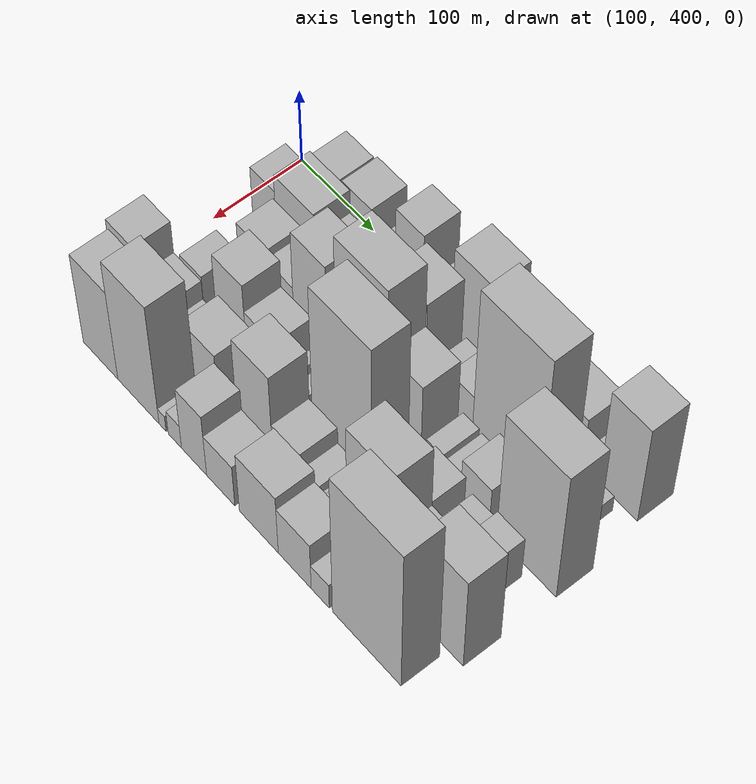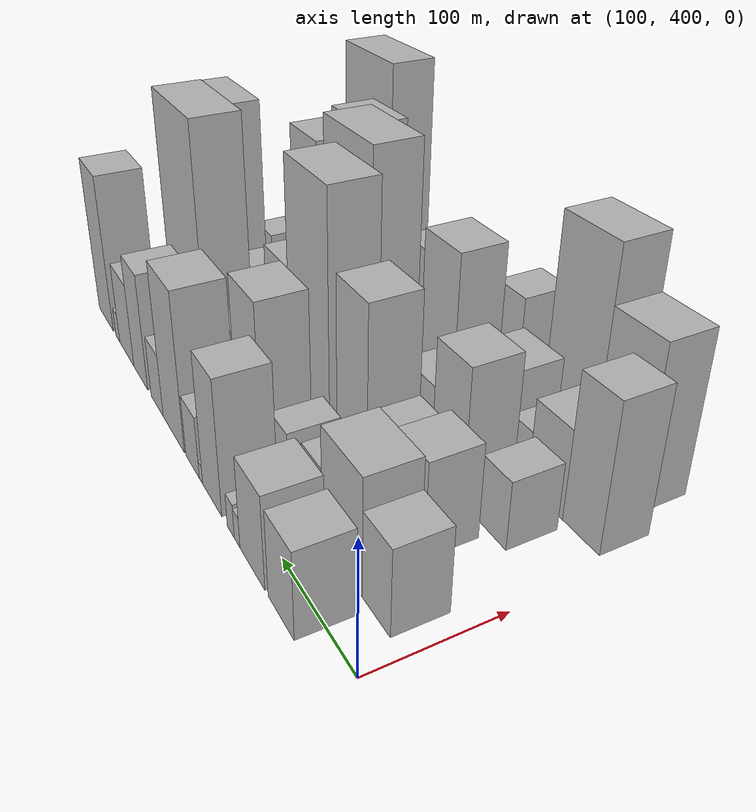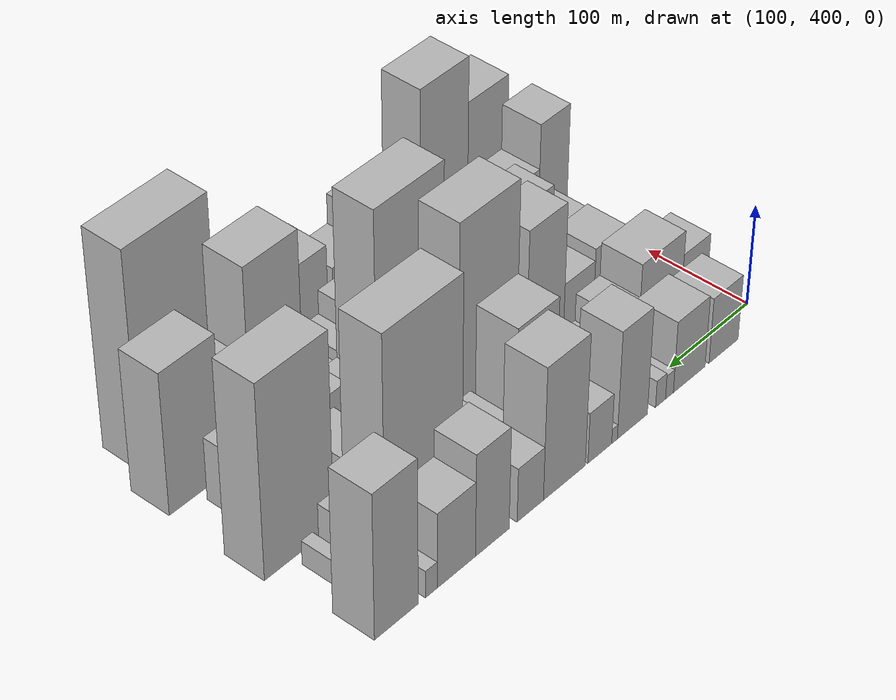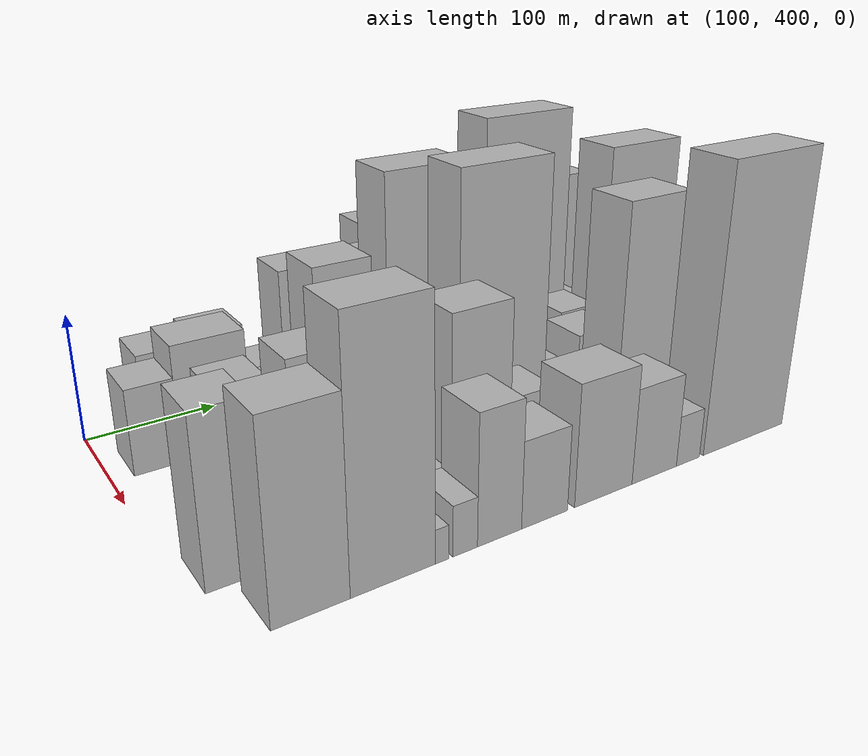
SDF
<sdf version="1.6">
 <world name="default">
  <model name="building_37">
   <static>1</static>
   <pose>100.0000 457.3815 0 0.000000 0.000000 0.000000</pose>
   <link name="link">
    <pose>0 0 33.00 0 0 0</pose>
    <collision name="collision"><geometry><box><size>40.0000 37.2246 66.0000</size></box></geometry></collision>
    <visual name="visual">
     <cast_shadows>0</cast_shadows>
     <geometry><box><size>40.0000 37.2246 66.0000</size></box></geometry>
     <material>
      <script>
       <uri>model://HANNAS_wall/materials/scripts</uri>
       <uri>model://HANNAS_wall/materials/textures</uri>
       <name>vrc/HANNAS_wall</name>
      </script>
     </material>
    </visual>
   </link>
  </model>
  <model name="building_38">
   <static>1</static>
   <pose>100.0000 500.9154 0 0.000000 0.000000 0.000000</pose>
   <link name="link">
    <pose>0 0 36.00 0 0 0</pose>
    <collision name="collision"><geometry><box><size>40.0000 39.8434 72.0000</size></box></geometry></collision>
    <visual name="visual">
     <cast_shadows>0</cast_shadows>
     <geometry><box><size>40.0000 39.8434 72.0000</size></box></geometry>
     <material>
      <script>
       <uri>model://HANNAS_wall/materials/scripts</uri>
       <uri>model://HANNAS_wall/materials/textures</uri>
       <name>vrc/HANNAS_wall</name>
      </script>
     </material>
    </visual>
   </link>
  </model>
  <model name="building_39">
   <static>1</static>
   <pose>100.0000 525.7118 0 0.000000 0.000000 0.000000</pose>
   <link name="link">
    <pose>0 0 12.00 0 0 0</pose>
    <collision name="collision"><geometry><box><size>40.0000 9.7493 24.0000</size></box></geometry></collision>
    <visual name="visual">
     <cast_shadows>0</cast_shadows>
     <geometry><box><size>40.0000 9.7493 24.0000</size></box></geometry>
     <material>
      <script>
       <uri>model://HANNAS_wall/materials/scripts</uri>
       <uri>model://HANNAS_wall/materials/textures</uri>
       <name>vrc/HANNAS_wall</name>
      </script>
     </material>
    </visual>
   </link>
  </model>
  <model name="building_40">
   <static>1</static>
   <pose>100.0000 536.7138 0 0.000000 0.000000 0.000000</pose>
   <link name="link">
    <pose>0 0 13.50 0 0 0</pose>
    <collision name="collision"><geometry><box><size>40.0000 12.2549 27.0000</size></box></geometry></collision>
    <visual name="visual">
     <cast_shadows>0</cast_shadows>
     <geometry><box><size>40.0000 12.2549 27.0000</size></box></geometry>
     <material>
      <script>
       <uri>model://HANNAS_wall/materials/scripts</uri>
       <uri>model://HANNAS_wall/materials/textures</uri>
       <name>vrc/HANNAS_wall</name>
      </script>
     </material>
    </visual>
   </link>
  </model>
  <model name="building_41">
   <static>1</static>
   <pose>100.0000 571.0990 0 0.000000 0.000000 0.000000</pose>
   <link name="link">
    <pose>0 0 54.00 0 0 0</pose>
    <collision name="collision"><geometry><box><size>40.0000 36.5154 108.0000</size></box></geometry></collision>
    <visual name="visual">
     <cast_shadows>0</cast_shadows>
     <geometry><box><size>40.0000 36.5154 108.0000</size></box></geometry>
     <material>
      <script>
       <uri>model://HANNAS_wall/materials/scripts</uri>
       <uri>model://HANNAS_wall/materials/textures</uri>
       <name>vrc/HANNAS_wall</name>
      </script>
     </material>
    </visual>
   </link>
  </model>
  <model name="building_42">
   <static>1</static>
   <pose>100.0000 592.7318 0 0.000000 0.000000 0.000000</pose>
   <link name="link">
    <pose>0 0 7.50 0 0 0</pose>
    <collision name="collision"><geometry><box><size>40.0000 6.7502 15.0000</size></box></geometry></collision>
    <visual name="visual">
     <cast_shadows>0</cast_shadows>
     <geometry><box><size>40.0000 6.7502 15.0000</size></box></geometry>
     <material>
      <script>
       <uri>model://HANNAS_wall/materials/scripts</uri>
       <uri>model://HANNAS_wall/materials/textures</uri>
       <name>vrc/HANNAS_wall</name>
      </script>
     </material>
    </visual>
   </link>
  </model>
  <model name="building_43">
   <static>1</static>
   <pose>100.0000 610.2991 0 0.000000 0.000000 0.000000</pose>
   <link name="link">
    <pose>0 0 25.50 0 0 0</pose>
    <collision name="collision"><geometry><box><size>40.0000 28.3845 51.0000</size></box></geometry></collision>
    <visual name="visual">
     <cast_shadows>0</cast_shadows>
     <geometry><box><size>40.0000 28.3845 51.0000</size></box></geometry>
     <material>
      <script>
       <uri>model://HANNAS_wall/materials/scripts</uri>
       <uri>model://HANNAS_wall/materials/textures</uri>
       <name>vrc/HANNAS_wall</name>
      </script>
     </material>
    </visual>
   </link>
  </model>
  <model name="building_44">
   <static>1</static>
   <pose>100.0000 651.9261 0 0.000000 0.000000 0.000000</pose>
   <link name="link">
    <pose>0 0 66.00 0 0 0</pose>
    <collision name="collision"><geometry><box><size>40.0000 48.8695 132.0000</size></box></geometry></collision>
    <visual name="visual">
     <cast_shadows>0</cast_shadows>
     <geometry><box><size>40.0000 48.8695 132.0000</size></box></geometry>
     <material>
      <script>
       <uri>model://HANNAS_wall/materials/scripts</uri>
       <uri>model://HANNAS_wall/materials/textures</uri>
       <name>vrc/HANNAS_wall</name>
      </script>
     </material>
    </visual>
   </link>
  </model>
  <model name="building_45">
   <static>1</static>
   <pose>100.0000 691.4108 0 0.000000 0.000000 0.000000</pose>
   <link name="link">
    <pose>0 0 27.00 0 0 0</pose>
    <collision name="collision"><geometry><box><size>40.0000 30.0999 54.0000</size></box></geometry></collision>
    <visual name="visual">
     <cast_shadows>0</cast_shadows>
     <geometry><box><size>40.0000 30.0999 54.0000</size></box></geometry>
     <material>
      <script>
       <uri>model://HANNAS_wall/materials/scripts</uri>
       <uri>model://HANNAS_wall/materials/textures</uri>
       <name>vrc/HANNAS_wall</name>
      </script>
     </material>
    </visual>
   </link>
  </model>
  <model name="building_46">
   <static>1</static>
   <pose>100.0000 734.3615 0 0.000000 0.000000 0.000000</pose>
   <link name="link">
    <pose>0 0 51.00 0 0 0</pose>
    <collision name="collision"><geometry><box><size>40.0000 37.8015 102.0000</size></box></geometry></collision>
    <visual name="visual">
     <cast_shadows>0</cast_shadows>
     <geometry><box><size>40.0000 37.8015 102.0000</size></box></geometry>
     <material>
      <script>
       <uri>model://HANNAS_wall/materials/scripts</uri>
       <uri>model://HANNAS_wall/materials/textures</uri>
       <name>vrc/HANNAS_wall</name>
      </script>
     </material>
    </visual>
   </link>
  </model>
  <model name="building_47">
   <static>1</static>
   <pose>100.0000 774.2357 0 0.000000 0.000000 0.000000</pose>
   <link name="link">
    <pose>0 0 37.50 0 0 0</pose>
    <collision name="collision"><geometry><box><size>40.0000 41.9469 75.0000</size></box></geometry></collision>
    <visual name="visual">
     <cast_shadows>0</cast_shadows>
     <geometry><box><size>40.0000 41.9469 75.0000</size></box></geometry>
     <material>
      <script>
       <uri>model://HANNAS_wall/materials/scripts</uri>
       <uri>model://HANNAS_wall/materials/textures</uri>
       <name>vrc/HANNAS_wall</name>
      </script>
     </material>
    </visual>
   </link>
  </model>
  <model name="building_48">
   <static>1</static>
   <pose>100.0000 801.4571 0 0.000000 0.000000 0.000000</pose>
   <link name="link">
    <pose>0 0 13.50 0 0 0</pose>
    <collision name="collision"><geometry><box><size>40.0000 12.4958 27.0000</size></box></geometry></collision>
    <visual name="visual">
     <cast_shadows>0</cast_shadows>
     <geometry><box><size>40.0000 12.4958 27.0000</size></box></geometry>
     <material>
      <script>
       <uri>model://HANNAS_wall/materials/scripts</uri>
       <uri>model://HANNAS_wall/materials/textures</uri>
       <name>vrc/HANNAS_wall</name>
      </script>
     </material>
    </visual>
   </link>
  </model>
  <model name="building_49">
   <static>1</static>
   <pose>100.0000 838.8914 0 0.000000 0.000000 0.000000</pose>
   <link name="link">
    <pose>0 0 72.00 0 0 0</pose>
    <collision name="collision"><geometry><box><size>40.0000 46.3728 144.0000</size></box></geometry></collision>
    <visual name="visual">
     <cast_shadows>0</cast_shadows>
     <geometry><box><size>40.0000 46.3728 144.0000</size></box></geometry>
     <material>
      <script>
       <uri>model://HANNAS_wall/materials/scripts</uri>
       <uri>model://HANNAS_wall/materials/textures</uri>
       <name>vrc/HANNAS_wall</name>
      </script>
     </material>
    </visual>
   </link>
  </model>
  <model name="building_82">
   <static>1</static>
   <pose>149.0000 432.5833 0 0.000000 0.000000 0.000000</pose>
   <link name="link">
    <pose>0 0 33.00 0 0 0</pose>
    <collision name="collision"><geometry><box><size>40.0000 33.8476 66.0000</size></box></geometry></collision>
    <visual name="visual">
     <cast_shadows>0</cast_shadows>
     <geometry><box><size>40.0000 33.8476 66.0000</size></box></geometry>
     <material>
      <script>
       <uri>model://HANNAS_wall/materials/scripts</uri>
       <uri>model://HANNAS_wall/materials/textures</uri>
       <name>vrc/HANNAS_wall</name>
      </script>
     </material>
    </visual>
   </link>
  </model>
  <model name="building_83">
   <static>1</static>
   <pose>149.0000 476.3656 0 0.000000 0.000000 0.000000</pose>
   <link name="link">
    <pose>0 0 45.00 0 0 0</pose>
    <collision name="collision"><geometry><box><size>40.0000 53.7170 90.0000</size></box></geometry></collision>
    <visual name="visual">
     <cast_shadows>0</cast_shadows>
     <geometry><box><size>40.0000 53.7170 90.0000</size></box></geometry>
     <material>
      <script>
       <uri>model://HANNAS_wall/materials/scripts</uri>
       <uri>model://HANNAS_wall/materials/textures</uri>
       <name>vrc/HANNAS_wall</name>
      </script>
     </material>
    </visual>
   </link>
  </model>
  <model name="building_84">
   <static>1</static>
   <pose>149.0000 517.8109 0 0.000000 0.000000 0.000000</pose>
   <link name="link">
    <pose>0 0 28.50 0 0 0</pose>
    <collision name="collision"><geometry><box><size>40.0000 29.1735 57.0000</size></box></geometry></collision>
    <visual name="visual">
     <cast_shadows>0</cast_shadows>
     <geometry><box><size>40.0000 29.1735 57.0000</size></box></geometry>
     <material>
      <script>
       <uri>model://HANNAS_wall/materials/scripts</uri>
       <uri>model://HANNAS_wall/materials/textures</uri>
       <name>vrc/HANNAS_wall</name>
      </script>
     </material>
    </visual>
   </link>
  </model>
  <model name="building_85">
   <static>1</static>
   <pose>149.0000 539.9360 0 0.000000 0.000000 0.000000</pose>
   <link name="link">
    <pose>0 0 15.00 0 0 0</pose>
    <collision name="collision"><geometry><box><size>40.0000 15.0767 30.0000</size></box></geometry></collision>
    <visual name="visual">
     <cast_shadows>0</cast_shadows>
     <geometry><box><size>40.0000 15.0767 30.0000</size></box></geometry>
     <material>
      <script>
       <uri>model://HANNAS_wall/materials/scripts</uri>
       <uri>model://HANNAS_wall/materials/textures</uri>
       <name>vrc/HANNAS_wall</name>
      </script>
     </material>
    </visual>
   </link>
  </model>
  <model name="building_86">
   <static>1</static>
   <pose>149.0000 569.3624 0 0.000000 0.000000 0.000000</pose>
   <link name="link">
    <pose>0 0 24.00 0 0 0</pose>
    <collision name="collision"><geometry><box><size>40.0000 27.7762 48.0000</size></box></geometry></collision>
    <visual name="visual">
     <cast_shadows>0</cast_shadows>
     <geometry><box><size>40.0000 27.7762 48.0000</size></box></geometry>
     <material>
      <script>
       <uri>model://HANNAS_wall/materials/scripts</uri>
       <uri>model://HANNAS_wall/materials/textures</uri>
       <name>vrc/HANNAS_wall</name>
      </script>
     </material>
    </visual>
   </link>
  </model>
  <model name="building_87">
   <static>1</static>
   <pose>149.0000 588.1633 0 0.000000 0.000000 0.000000</pose>
   <link name="link">
    <pose>0 0 10.50 0 0 0</pose>
    <collision name="collision"><geometry><box><size>40.0000 9.8255 21.0000</size></box></geometry></collision>
    <visual name="visual">
     <cast_shadows>0</cast_shadows>
     <geometry><box><size>40.0000 9.8255 21.0000</size></box></geometry>
     <material>
      <script>
       <uri>model://HANNAS_wall/materials/scripts</uri>
       <uri>model://HANNAS_wall/materials/textures</uri>
       <name>vrc/HANNAS_wall</name>
      </script>
     </material>
    </visual>
   </link>
  </model>
  <model name="building_88">
   <static>1</static>
   <pose>149.0000 598.0883 0 0.000000 0.000000 0.000000</pose>
   <link name="link">
    <pose>0 0 12.00 0 0 0</pose>
    <collision name="collision"><geometry><box><size>40.0000 10.0245 24.0000</size></box></geometry></collision>
    <visual name="visual">
     <cast_shadows>0</cast_shadows>
     <geometry><box><size>40.0000 10.0245 24.0000</size></box></geometry>
     <material>
      <script>
       <uri>model://HANNAS_wall/materials/scripts</uri>
       <uri>model://HANNAS_wall/materials/textures</uri>
       <name>vrc/HANNAS_wall</name>
      </script>
     </material>
    </visual>
   </link>
  </model>
  <model name="building_89">
   <static>1</static>
   <pose>149.0000 626.7183 0 0.000000 0.000000 0.000000</pose>
   <link name="link">
    <pose>0 0 61.50 0 0 0</pose>
    <collision name="collision"><geometry><box><size>40.0000 47.2356 123.0000</size></box></geometry></collision>
    <visual name="visual">
     <cast_shadows>0</cast_shadows>
     <geometry><box><size>40.0000 47.2356 123.0000</size></box></geometry>
     <material>
      <script>
       <uri>model://HANNAS_wall/materials/scripts</uri>
       <uri>model://HANNAS_wall/materials/textures</uri>
       <name>vrc/HANNAS_wall</name>
      </script>
     </material>
    </visual>
   </link>
  </model>
  <model name="building_90">
   <static>1</static>
   <pose>149.0000 668.1633 0 0.000000 0.000000 0.000000</pose>
   <link name="link">
    <pose>0 0 21.00 0 0 0</pose>
    <collision name="collision"><geometry><box><size>40.0000 23.6545 42.0000</size></box></geometry></collision>
    <visual name="visual">
     <cast_shadows>0</cast_shadows>
     <geometry><box><size>40.0000 23.6545 42.0000</size></box></geometry>
     <material>
      <script>
       <uri>model://HANNAS_wall/materials/scripts</uri>
       <uri>model://HANNAS_wall/materials/textures</uri>
       <name>vrc/HANNAS_wall</name>
      </script>
     </material>
    </visual>
   </link>
  </model>
  <model name="building_91">
   <static>1</static>
   <pose>149.0000 695.7769 0 0.000000 0.000000 0.000000</pose>
   <link name="link">
    <pose>0 0 28.50 0 0 0</pose>
    <collision name="collision"><geometry><box><size>40.0000 31.5726 57.0000</size></box></geometry></collision>
    <visual name="visual">
     <cast_shadows>0</cast_shadows>
     <geometry><box><size>40.0000 31.5726 57.0000</size></box></geometry>
     <material>
      <script>
       <uri>model://HANNAS_wall/materials/scripts</uri>
       <uri>model://HANNAS_wall/materials/textures</uri>
       <name>vrc/HANNAS_wall</name>
      </script>
     </material>
    </visual>
   </link>
  </model>
  <model name="building_92">
   <static>1</static>
   <pose>149.0000 754.1315 0 0.000000 0.000000 0.000000</pose>
   <link name="link">
    <pose>0 0 108.00 0 0 0</pose>
    <collision name="collision"><geometry><box><size>40.0000 85.1365 216.0000</size></box></geometry></collision>
    <visual name="visual">
     <cast_shadows>0</cast_shadows>
     <geometry><box><size>40.0000 85.1365 216.0000</size></box></geometry>
     <material>
      <script>
       <uri>model://HANNAS_wall/materials/scripts</uri>
       <uri>model://HANNAS_wall/materials/textures</uri>
       <name>vrc/HANNAS_wall</name>
      </script>
     </material>
    </visual>
   </link>
  </model>
  <model name="building_93">
   <static>1</static>
   <pose>149.0000 810.1829 0 0.000000 0.000000 0.000000</pose>
   <link name="link">
    <pose>0 0 24.00 0 0 0</pose>
    <collision name="collision"><geometry><box><size>40.0000 26.9665 48.0000</size></box></geometry></collision>
    <visual name="visual">
     <cast_shadows>0</cast_shadows>
     <geometry><box><size>40.0000 26.9665 48.0000</size></box></geometry>
     <material>
      <script>
       <uri>model://HANNAS_wall/materials/scripts</uri>
       <uri>model://HANNAS_wall/materials/textures</uri>
       <name>vrc/HANNAS_wall</name>
      </script>
     </material>
    </visual>
   </link>
  </model>
  <model name="building_94">
   <static>1</static>
   <pose>149.0000 835.6136 0 0.000000 0.000000 0.000000</pose>
   <link name="link">
    <pose>0 0 12.00 0 0 0</pose>
    <collision name="collision"><geometry><box><size>40.0000 11.8947 24.0000</size></box></geometry></collision>
    <visual name="visual">
     <cast_shadows>0</cast_shadows>
     <geometry><box><size>40.0000 11.8947 24.0000</size></box></geometry>
     <material>
      <script>
       <uri>model://HANNAS_wall/materials/scripts</uri>
       <uri>model://HANNAS_wall/materials/textures</uri>
       <name>vrc/HANNAS_wall</name>
      </script>
     </material>
    </visual>
   </link>
  </model>
  <model name="building_131">
   <static>1</static>
   <pose>198.0000 478.6338 0 0.000000 0.000000 0.000000</pose>
   <link name="link">
    <pose>0 0 37.50 0 0 0</pose>
    <collision name="collision"><geometry><box><size>40.0000 38.6216 75.0000</size></box></geometry></collision>
    <visual name="visual">
     <cast_shadows>0</cast_shadows>
     <geometry><box><size>40.0000 38.6216 75.0000</size></box></geometry>
     <material>
      <script>
       <uri>model://HANNAS_wall/materials/scripts</uri>
       <uri>model://HANNAS_wall/materials/textures</uri>
       <name>vrc/HANNAS_wall</name>
      </script>
     </material>
    </visual>
   </link>
  </model>
  <model name="building_132">
   <static>1</static>
   <pose>198.0000 516.4399 0 0.000000 0.000000 0.000000</pose>
   <link name="link">
    <pose>0 0 31.50 0 0 0</pose>
    <collision name="collision"><geometry><box><size>40.0000 36.9906 63.0000</size></box></geometry></collision>
    <visual name="visual">
     <cast_shadows>0</cast_shadows>
     <geometry><box><size>40.0000 36.9906 63.0000</size></box></geometry>
     <material>
      <script>
       <uri>model://HANNAS_wall/materials/scripts</uri>
       <uri>model://HANNAS_wall/materials/textures</uri>
       <name>vrc/HANNAS_wall</name>
      </script>
     </material>
    </visual>
   </link>
  </model>
  <model name="building_133">
   <static>1</static>
   <pose>198.0000 557.3100 0 0.000000 0.000000 0.000000</pose>
   <link name="link">
    <pose>0 0 72.00 0 0 0</pose>
    <collision name="collision"><geometry><box><size>40.0000 44.7496 144.0000</size></box></geometry></collision>
    <visual name="visual">
     <cast_shadows>0</cast_shadows>
     <geometry><box><size>40.0000 44.7496 144.0000</size></box></geometry>
     <material>
      <script>
       <uri>model://HANNAS_wall/materials/scripts</uri>
       <uri>model://HANNAS_wall/materials/textures</uri>
       <name>vrc/HANNAS_wall</name>
      </script>
     </material>
    </visual>
   </link>
  </model>
  <model name="building_134">
   <static>1</static>
   <pose>198.0000 585.6108 0 0.000000 0.000000 0.000000</pose>
   <link name="link">
    <pose>0 0 12.00 0 0 0</pose>
    <collision name="collision"><geometry><box><size>40.0000 11.8521 24.0000</size></box></geometry></collision>
    <visual name="visual">
     <cast_shadows>0</cast_shadows>
     <geometry><box><size>40.0000 11.8521 24.0000</size></box></geometry>
     <material>
      <script>
       <uri>model://HANNAS_wall/materials/scripts</uri>
       <uri>model://HANNAS_wall/materials/textures</uri>
       <name>vrc/HANNAS_wall</name>
      </script>
     </material>
    </visual>
   </link>
  </model>
  <model name="building_135">
   <static>1</static>
   <pose>198.0000 625.3285 0 0.000000 0.000000 0.000000</pose>
   <link name="link">
    <pose>0 0 100.50 0 0 0</pose>
    <collision name="collision"><geometry><box><size>40.0000 67.5833 201.0000</size></box></geometry></collision>
    <visual name="visual">
     <cast_shadows>0</cast_shadows>
     <geometry><box><size>40.0000 67.5833 201.0000</size></box></geometry>
     <material>
      <script>
       <uri>model://HANNAS_wall/materials/scripts</uri>
       <uri>model://HANNAS_wall/materials/textures</uri>
       <name>vrc/HANNAS_wall</name>
      </script>
     </material>
    </visual>
   </link>
  </model>
  <model name="building_136">
   <static>1</static>
   <pose>198.0000 680.8904 0 0.000000 0.000000 0.000000</pose>
   <link name="link">
    <pose>0 0 55.50 0 0 0</pose>
    <collision name="collision"><geometry><box><size>40.0000 43.5403 111.0000</size></box></geometry></collision>
    <visual name="visual">
     <cast_shadows>0</cast_shadows>
     <geometry><box><size>40.0000 43.5403 111.0000</size></box></geometry>
     <material>
      <script>
       <uri>model://HANNAS_wall/materials/scripts</uri>
       <uri>model://HANNAS_wall/materials/textures</uri>
       <name>vrc/HANNAS_wall</name>
      </script>
     </material>
    </visual>
   </link>
  </model>
  <model name="building_137">
   <static>1</static>
   <pose>198.0000 718.9126 0 0.000000 0.000000 0.000000</pose>
   <link name="link">
    <pose>0 0 19.50 0 0 0</pose>
    <collision name="collision"><geometry><box><size>40.0000 20.5041 39.0000</size></box></geometry></collision>
    <visual name="visual">
     <cast_shadows>0</cast_shadows>
     <geometry><box><size>40.0000 20.5041 39.0000</size></box></geometry>
     <material>
      <script>
       <uri>model://HANNAS_wall/materials/scripts</uri>
       <uri>model://HANNAS_wall/materials/textures</uri>
       <name>vrc/HANNAS_wall</name>
      </script>
     </material>
    </visual>
   </link>
  </model>
  <model name="building_138">
   <static>1</static>
   <pose>198.0000 742.6350 0 0.000000 0.000000 0.000000</pose>
   <link name="link">
    <pose>0 0 18.00 0 0 0</pose>
    <collision name="collision"><geometry><box><size>40.0000 20.9407 36.0000</size></box></geometry></collision>
    <visual name="visual">
     <cast_shadows>0</cast_shadows>
     <geometry><box><size>40.0000 20.9407 36.0000</size></box></geometry>
     <material>
      <script>
       <uri>model://HANNAS_wall/materials/scripts</uri>
       <uri>model://HANNAS_wall/materials/textures</uri>
       <name>vrc/HANNAS_wall</name>
      </script>
     </material>
    </visual>
   </link>
  </model>
  <model name="building_139">
   <static>1</static>
   <pose>198.0000 771.1647 0 0.000000 0.000000 0.000000</pose>
   <link name="link">
    <pose>0 0 31.50 0 0 0</pose>
    <collision name="collision"><geometry><box><size>40.0000 36.1187 63.0000</size></box></geometry></collision>
    <visual name="visual">
     <cast_shadows>0</cast_shadows>
     <geometry><box><size>40.0000 36.1187 63.0000</size></box></geometry>
     <material>
      <script>
       <uri>model://HANNAS_wall/materials/scripts</uri>
       <uri>model://HANNAS_wall/materials/textures</uri>
       <name>vrc/HANNAS_wall</name>
      </script>
     </material>
    </visual>
   </link>
  </model>
  <model name="building_140">
   <static>1</static>
   <pose>198.0000 834.8562 0 0.000000 0.000000 0.000000</pose>
   <link name="link">
    <pose>0 0 96.00 0 0 0</pose>
    <collision name="collision"><geometry><box><size>40.0000 73.2644 192.0000</size></box></geometry></collision>
    <visual name="visual">
     <cast_shadows>0</cast_shadows>
     <geometry><box><size>40.0000 73.2644 192.0000</size></box></geometry>
     <material>
      <script>
       <uri>model://HANNAS_wall/materials/scripts</uri>
       <uri>model://HANNAS_wall/materials/textures</uri>
       <name>vrc/HANNAS_wall</name>
      </script>
     </material>
    </visual>
   </link>
  </model>
  <model name="building_175">
   <static>1</static>
   <pose>247.0000 457.1749 0 0.000000 0.000000 0.000000</pose>
   <link name="link">
    <pose>0 0 27.00 0 0 0</pose>
    <collision name="collision"><geometry><box><size>40.0000 30.0529 54.0000</size></box></geometry></collision>
    <visual name="visual">
     <cast_shadows>0</cast_shadows>
     <geometry><box><size>40.0000 30.0529 54.0000</size></box></geometry>
     <material>
      <script>
       <uri>model://HANNAS_wall/materials/scripts</uri>
       <uri>model://HANNAS_wall/materials/textures</uri>
       <name>vrc/HANNAS_wall</name>
      </script>
     </material>
    </visual>
   </link>
  </model>
  <model name="building_176">
   <static>1</static>
   <pose>247.0000 484.9162 0 0.000000 0.000000 0.000000</pose>
   <link name="link">
    <pose>0 0 12.00 0 0 0</pose>
    <collision name="collision"><geometry><box><size>40.0000 11.4298 24.0000</size></box></geometry></collision>
    <visual name="visual">
     <cast_shadows>0</cast_shadows>
     <geometry><box><size>40.0000 11.4298 24.0000</size></box></geometry>
     <material>
      <script>
       <uri>model://HANNAS_wall/materials/scripts</uri>
       <uri>model://HANNAS_wall/materials/textures</uri>
       <name>vrc/HANNAS_wall</name>
      </script>
     </material>
    </visual>
   </link>
  </model>
  <model name="building_177">
   <static>1</static>
   <pose>247.0000 510.9253 0 0.000000 0.000000 0.000000</pose>
   <link name="link">
    <pose>0 0 54.00 0 0 0</pose>
    <collision name="collision"><geometry><box><size>40.0000 40.5884 108.0000</size></box></geometry></collision>
    <visual name="visual">
     <cast_shadows>0</cast_shadows>
     <geometry><box><size>40.0000 40.5884 108.0000</size></box></geometry>
     <material>
      <script>
       <uri>model://HANNAS_wall/materials/scripts</uri>
       <uri>model://HANNAS_wall/materials/textures</uri>
       <name>vrc/HANNAS_wall</name>
      </script>
     </material>
    </visual>
   </link>
  </model>
  <model name="building_178">
   <static>1</static>
   <pose>247.0000 551.6003 0 0.000000 0.000000 0.000000</pose>
   <link name="link">
    <pose>0 0 34.50 0 0 0</pose>
    <collision name="collision"><geometry><box><size>40.0000 40.7615 69.0000</size></box></geometry></collision>
    <visual name="visual">
     <cast_shadows>0</cast_shadows>
     <geometry><box><size>40.0000 40.7615 69.0000</size></box></geometry>
     <material>
      <script>
       <uri>model://HANNAS_wall/materials/scripts</uri>
       <uri>model://HANNAS_wall/materials/textures</uri>
       <name>vrc/HANNAS_wall</name>
      </script>
     </material>
    </visual>
   </link>
  </model>
  <model name="building_179">
   <static>1</static>
   <pose>247.0000 577.8345 0 0.000000 0.000000 0.000000</pose>
   <link name="link">
    <pose>0 0 12.00 0 0 0</pose>
    <collision name="collision"><geometry><box><size>40.0000 11.7069 24.0000</size></box></geometry></collision>
    <visual name="visual">
     <cast_shadows>0</cast_shadows>
     <geometry><box><size>40.0000 11.7069 24.0000</size></box></geometry>
     <material>
      <script>
       <uri>model://HANNAS_wall/materials/scripts</uri>
       <uri>model://HANNAS_wall/materials/textures</uri>
       <name>vrc/HANNAS_wall</name>
      </script>
     </material>
    </visual>
   </link>
  </model>
  <model name="building_180">
   <static>1</static>
   <pose>247.0000 601.9031 0 0.000000 0.000000 0.000000</pose>
   <link name="link">
    <pose>0 0 15.00 0 0 0</pose>
    <collision name="collision"><geometry><box><size>40.0000 16.4303 30.0000</size></box></geometry></collision>
    <visual name="visual">
     <cast_shadows>0</cast_shadows>
     <geometry><box><size>40.0000 16.4303 30.0000</size></box></geometry>
     <material>
      <script>
       <uri>model://HANNAS_wall/materials/scripts</uri>
       <uri>model://HANNAS_wall/materials/textures</uri>
       <name>vrc/HANNAS_wall</name>
      </script>
     </material>
    </visual>
   </link>
  </model>
  <model name="building_181">
   <static>1</static>
   <pose>247.0000 658.5763 0 0.000000 0.000000 0.000000</pose>
   <link name="link">
    <pose>0 0 105.00 0 0 0</pose>
    <collision name="collision"><geometry><box><size>40.0000 76.9161 210.0000</size></box></geometry></collision>
    <visual name="visual">
     <cast_shadows>0</cast_shadows>
     <geometry><box><size>40.0000 76.9161 210.0000</size></box></geometry>
     <material>
      <script>
       <uri>model://HANNAS_wall/materials/scripts</uri>
       <uri>model://HANNAS_wall/materials/textures</uri>
       <name>vrc/HANNAS_wall</name>
      </script>
     </material>
    </visual>
   </link>
  </model>
  <model name="building_182">
   <static>1</static>
   <pose>247.0000 709.9634 0 0.000000 0.000000 0.000000</pose>
   <link name="link">
    <pose>0 0 22.50 0 0 0</pose>
    <collision name="collision"><geometry><box><size>40.0000 25.8583 45.0000</size></box></geometry></collision>
    <visual name="visual">
     <cast_shadows>0</cast_shadows>
     <geometry><box><size>40.0000 25.8583 45.0000</size></box></geometry>
     <material>
      <script>
       <uri>model://HANNAS_wall/materials/scripts</uri>
       <uri>model://HANNAS_wall/materials/textures</uri>
       <name>vrc/HANNAS_wall</name>
      </script>
     </material>
    </visual>
   </link>
  </model>
  <model name="building_183">
   <static>1</static>
   <pose>247.0000 748.8377 0 0.000000 0.000000 0.000000</pose>
   <link name="link">
    <pose>0 0 33.00 0 0 0</pose>
    <collision name="collision"><geometry><box><size>40.0000 37.8903 66.0000</size></box></geometry></collision>
    <visual name="visual">
     <cast_shadows>0</cast_shadows>
     <geometry><box><size>40.0000 37.8903 66.0000</size></box></geometry>
     <material>
      <script>
       <uri>model://HANNAS_wall/materials/scripts</uri>
       <uri>model://HANNAS_wall/materials/textures</uri>
       <name>vrc/HANNAS_wall</name>
      </script>
     </material>
    </visual>
   </link>
  </model>
  <model name="building_184">
   <static>1</static>
   <pose>247.0000 772.1478 0 0.000000 0.000000 0.000000</pose>
   <link name="link">
    <pose>0 0 10.50 0 0 0</pose>
    <collision name="collision"><geometry><box><size>40.0000 8.7299 21.0000</size></box></geometry></collision>
    <visual name="visual">
     <cast_shadows>0</cast_shadows>
     <geometry><box><size>40.0000 8.7299 21.0000</size></box></geometry>
     <material>
      <script>
       <uri>model://HANNAS_wall/materials/scripts</uri>
       <uri>model://HANNAS_wall/materials/textures</uri>
       <name>vrc/HANNAS_wall</name>
      </script>
     </material>
    </visual>
   </link>
  </model>
  <model name="building_185">
   <static>1</static>
   <pose>247.0000 791.4962 0 0.000000 0.000000 0.000000</pose>
   <link name="link">
    <pose>0 0 25.50 0 0 0</pose>
    <collision name="collision"><geometry><box><size>40.0000 29.9671 51.0000</size></box></geometry></collision>
    <visual name="visual">
     <cast_shadows>0</cast_shadows>
     <geometry><box><size>40.0000 29.9671 51.0000</size></box></geometry>
     <material>
      <script>
       <uri>model://HANNAS_wall/materials/scripts</uri>
       <uri>model://HANNAS_wall/materials/textures</uri>
       <name>vrc/HANNAS_wall</name>
      </script>
     </material>
    </visual>
   </link>
  </model>
  <model name="building_186">
   <static>1</static>
   <pose>247.0000 822.9767 0 0.000000 0.000000 0.000000</pose>
   <link name="link">
    <pose>0 0 31.50 0 0 0</pose>
    <collision name="collision"><geometry><box><size>40.0000 32.9938 63.0000</size></box></geometry></collision>
    <visual name="visual">
     <cast_shadows>0</cast_shadows>
     <geometry><box><size>40.0000 32.9938 63.0000</size></box></geometry>
     <material>
      <script>
       <uri>model://HANNAS_wall/materials/scripts</uri>
       <uri>model://HANNAS_wall/materials/textures</uri>
       <name>vrc/HANNAS_wall</name>
      </script>
     </material>
    </visual>
   </link>
  </model>
  <model name="building_224">
   <static>1</static>
   <pose>296.0000 429.8109 0 0.000000 0.000000 0.000000</pose>
   <link name="link">
    <pose>0 0 58.50 0 0 0</pose>
    <collision name="collision"><geometry><box><size>40.0000 36.4573 117.0000</size></box></geometry></collision>
    <visual name="visual">
     <cast_shadows>0</cast_shadows>
     <geometry><box><size>40.0000 36.4573 117.0000</size></box></geometry>
     <material>
      <script>
       <uri>model://HANNAS_wall/materials/scripts</uri>
       <uri>model://HANNAS_wall/materials/textures</uri>
       <name>vrc/HANNAS_wall</name>
      </script>
     </material>
    </visual>
   </link>
  </model>
  <model name="building_225">
   <static>1</static>
   <pose>296.0000 466.8709 0 0.000000 0.000000 0.000000</pose>
   <link name="link">
    <pose>0 0 36.00 0 0 0</pose>
    <collision name="collision"><geometry><box><size>40.0000 37.6627 72.0000</size></box></geometry></collision>
    <visual name="visual">
     <cast_shadows>0</cast_shadows>
     <geometry><box><size>40.0000 37.6627 72.0000</size></box></geometry>
     <material>
      <script>
       <uri>model://HANNAS_wall/materials/scripts</uri>
       <uri>model://HANNAS_wall/materials/textures</uri>
       <name>vrc/HANNAS_wall</name>
      </script>
     </material>
    </visual>
   </link>
  </model>
  <model name="building_226">
   <static>1</static>
   <pose>296.0000 497.3883 0 0.000000 0.000000 0.000000</pose>
   <link name="link">
    <pose>0 0 22.50 0 0 0</pose>
    <collision name="collision"><geometry><box><size>40.0000 23.3720 45.0000</size></box></geometry></collision>
    <visual name="visual">
     <cast_shadows>0</cast_shadows>
     <geometry><box><size>40.0000 23.3720 45.0000</size></box></geometry>
     <material>
      <script>
       <uri>model://HANNAS_wall/materials/scripts</uri>
       <uri>model://HANNAS_wall/materials/textures</uri>
       <name>vrc/HANNAS_wall</name>
      </script>
     </material>
    </visual>
   </link>
  </model>
  <model name="building_227">
   <static>1</static>
   <pose>296.0000 531.7012 0 0.000000 0.000000 0.000000</pose>
   <link name="link">
    <pose>0 0 39.00 0 0 0</pose>
    <collision name="collision"><geometry><box><size>40.0000 45.2537 78.0000</size></box></geometry></collision>
    <visual name="visual">
     <cast_shadows>0</cast_shadows>
     <geometry><box><size>40.0000 45.2537 78.0000</size></box></geometry>
     <material>
      <script>
       <uri>model://HANNAS_wall/materials/scripts</uri>
       <uri>model://HANNAS_wall/materials/textures</uri>
       <name>vrc/HANNAS_wall</name>
      </script>
     </material>
    </visual>
   </link>
  </model>
  <model name="building_228">
   <static>1</static>
   <pose>296.0000 558.0871 0 0.000000 0.000000 0.000000</pose>
   <link name="link">
    <pose>0 0 9.00 0 0 0</pose>
    <collision name="collision"><geometry><box><size>40.0000 7.5182 18.0000</size></box></geometry></collision>
    <visual name="visual">
     <cast_shadows>0</cast_shadows>
     <geometry><box><size>40.0000 7.5182 18.0000</size></box></geometry>
     <material>
      <script>
       <uri>model://HANNAS_wall/materials/scripts</uri>
       <uri>model://HANNAS_wall/materials/textures</uri>
       <name>vrc/HANNAS_wall</name>
      </script>
     </material>
    </visual>
   </link>
  </model>
  <model name="building_229">
   <static>1</static>
   <pose>296.0000 575.7932 0 0.000000 0.000000 0.000000</pose>
   <link name="link">
    <pose>0 0 12.00 0 0 0</pose>
    <collision name="collision"><geometry><box><size>40.0000 9.8938 24.0000</size></box></geometry></collision>
    <visual name="visual">
     <cast_shadows>0</cast_shadows>
     <geometry><box><size>40.0000 9.8938 24.0000</size></box></geometry>
     <material>
      <script>
       <uri>model://HANNAS_wall/materials/scripts</uri>
       <uri>model://HANNAS_wall/materials/textures</uri>
       <name>vrc/HANNAS_wall</name>
      </script>
     </material>
    </visual>
   </link>
  </model>
  <model name="building_230">
   <static>1</static>
   <pose>296.0000 604.5027 0 0.000000 0.000000 0.000000</pose>
   <link name="link">
    <pose>0 0 67.50 0 0 0</pose>
    <collision name="collision"><geometry><box><size>40.0000 47.5253 135.0000</size></box></geometry></collision>
    <visual name="visual">
     <cast_shadows>0</cast_shadows>
     <geometry><box><size>40.0000 47.5253 135.0000</size></box></geometry>
     <material>
      <script>
       <uri>model://HANNAS_wall/materials/scripts</uri>
       <uri>model://HANNAS_wall/materials/textures</uri>
       <name>vrc/HANNAS_wall</name>
      </script>
     </material>
    </visual>
   </link>
  </model>
  <model name="building_231">
   <static>1</static>
   <pose>296.0000 646.5745 0 0.000000 0.000000 0.000000</pose>
   <link name="link">
    <pose>0 0 31.50 0 0 0</pose>
    <collision name="collision"><geometry><box><size>40.0000 36.6182 63.0000</size></box></geometry></collision>
    <visual name="visual">
     <cast_shadows>0</cast_shadows>
     <geometry><box><size>40.0000 36.6182 63.0000</size></box></geometry>
     <material>
      <script>
       <uri>model://HANNAS_wall/materials/scripts</uri>
       <uri>model://HANNAS_wall/materials/textures</uri>
       <name>vrc/HANNAS_wall</name>
      </script>
     </material>
    </visual>
   </link>
  </model>
  <model name="building_232">
   <static>1</static>
   <pose>296.0000 675.9870 0 0.000000 0.000000 0.000000</pose>
   <link name="link">
    <pose>0 0 19.50 0 0 0</pose>
    <collision name="collision"><geometry><box><size>40.0000 22.2069 39.0000</size></box></geometry></collision>
    <visual name="visual">
     <cast_shadows>0</cast_shadows>
     <geometry><box><size>40.0000 22.2069 39.0000</size></box></geometry>
     <material>
      <script>
       <uri>model://HANNAS_wall/materials/scripts</uri>
       <uri>model://HANNAS_wall/materials/textures</uri>
       <name>vrc/HANNAS_wall</name>
      </script>
     </material>
    </visual>
   </link>
  </model>
  <model name="building_233">
   <static>1</static>
   <pose>296.0000 692.6388 0 0.000000 0.000000 0.000000</pose>
   <link name="link">
    <pose>0 0 13.50 0 0 0</pose>
    <collision name="collision"><geometry><box><size>40.0000 11.0968 27.0000</size></box></geometry></collision>
    <visual name="visual">
     <cast_shadows>0</cast_shadows>
     <geometry><box><size>40.0000 11.0968 27.0000</size></box></geometry>
     <material>
      <script>
       <uri>model://HANNAS_wall/materials/scripts</uri>
       <uri>model://HANNAS_wall/materials/textures</uri>
       <name>vrc/HANNAS_wall</name>
      </script>
     </material>
    </visual>
   </link>
  </model>
  <model name="building_234">
   <static>1</static>
   <pose>296.0000 711.6516 0 0.000000 0.000000 0.000000</pose>
   <link name="link">
    <pose>0 0 22.50 0 0 0</pose>
    <collision name="collision"><geometry><box><size>40.0000 26.9288 45.0000</size></box></geometry></collision>
    <visual name="visual">
     <cast_shadows>0</cast_shadows>
     <geometry><box><size>40.0000 26.9288 45.0000</size></box></geometry>
     <material>
      <script>
       <uri>model://HANNAS_wall/materials/scripts</uri>
       <uri>model://HANNAS_wall/materials/textures</uri>
       <name>vrc/HANNAS_wall</name>
      </script>
     </material>
    </visual>
   </link>
  </model>
  <model name="building_235">
   <static>1</static>
   <pose>296.0000 753.6729 0 0.000000 0.000000 0.000000</pose>
   <link name="link">
    <pose>0 0 91.50 0 0 0</pose>
    <collision name="collision"><geometry><box><size>40.0000 57.1137 183.0000</size></box></geometry></collision>
    <visual name="visual">
     <cast_shadows>0</cast_shadows>
     <geometry><box><size>40.0000 57.1137 183.0000</size></box></geometry>
     <material>
      <script>
       <uri>model://HANNAS_wall/materials/scripts</uri>
       <uri>model://HANNAS_wall/materials/textures</uri>
       <name>vrc/HANNAS_wall</name>
      </script>
     </material>
    </visual>
   </link>
  </model>
  <model name="building_236">
   <static>1</static>
   <pose>296.0000 797.9144 0 0.000000 0.000000 0.000000</pose>
   <link name="link">
    <pose>0 0 48.00 0 0 0</pose>
    <collision name="collision"><geometry><box><size>40.0000 31.3693 96.0000</size></box></geometry></collision>
    <visual name="visual">
     <cast_shadows>0</cast_shadows>
     <geometry><box><size>40.0000 31.3693 96.0000</size></box></geometry>
     <material>
      <script>
       <uri>model://HANNAS_wall/materials/scripts</uri>
       <uri>model://HANNAS_wall/materials/textures</uri>
       <name>vrc/HANNAS_wall</name>
      </script>
     </material>
    </visual>
   </link>
  </model>
  <model name="building_237">
   <static>1</static>
   <pose>296.0000 841.7805 0 0.000000 0.000000 0.000000</pose>
   <link name="link">
    <pose>0 0 70.50 0 0 0</pose>
    <collision name="collision"><geometry><box><size>40.0000 56.3629 141.0000</size></box></geometry></collision>
    <visual name="visual">
     <cast_shadows>0</cast_shadows>
     <geometry><box><size>40.0000 56.3629 141.0000</size></box></geometry>
     <material>
      <script>
       <uri>model://HANNAS_wall/materials/scripts</uri>
       <uri>model://HANNAS_wall/materials/textures</uri>
       <name>vrc/HANNAS_wall</name>
      </script>
     </material>
    </visual>
   </link>
  </model>
  <model name="building_277">
   <static>1</static>
   <pose>345.0000 454.3851 0 0.000000 0.000000 0.000000</pose>
   <link name="link">
    <pose>0 0 66.00 0 0 0</pose>
    <collision name="collision"><geometry><box><size>40.0000 49.0219 132.0000</size></box></geometry></collision>
    <visual name="visual">
     <cast_shadows>0</cast_shadows>
     <geometry><box><size>40.0000 49.0219 132.0000</size></box></geometry>
     <material>
      <script>
       <uri>model://HANNAS_wall/materials/scripts</uri>
       <uri>model://HANNAS_wall/materials/textures</uri>
       <name>vrc/HANNAS_wall</name>
      </script>
     </material>
    </visual>
   </link>
  </model>
  <model name="building_278">
   <static>1</static>
   <pose>345.0000 507.6123 0 0.000000 0.000000 0.000000</pose>
   <link name="link">
    <pose>0 0 88.50 0 0 0</pose>
    <collision name="collision"><geometry><box><size>40.0000 57.4324 177.0000</size></box></geometry></collision>
    <visual name="visual">
     <cast_shadows>0</cast_shadows>
     <geometry><box><size>40.0000 57.4324 177.0000</size></box></geometry>
     <material>
      <script>
       <uri>model://HANNAS_wall/materials/scripts</uri>
       <uri>model://HANNAS_wall/materials/textures</uri>
       <name>vrc/HANNAS_wall</name>
      </script>
     </material>
    </visual>
   </link>
  </model>
  <model name="building_279">
   <static>1</static>
   <pose>345.0000 541.1714 0 0.000000 0.000000 0.000000</pose>
   <link name="link">
    <pose>0 0 12.00 0 0 0</pose>
    <collision name="collision"><geometry><box><size>40.0000 9.6858 24.0000</size></box></geometry></collision>
    <visual name="visual">
     <cast_shadows>0</cast_shadows>
     <geometry><box><size>40.0000 9.6858 24.0000</size></box></geometry>
     <material>
      <script>
       <uri>model://HANNAS_wall/materials/scripts</uri>
       <uri>model://HANNAS_wall/materials/textures</uri>
       <name>vrc/HANNAS_wall</name>
      </script>
     </material>
    </visual>
   </link>
  </model>
  <model name="building_280">
   <static>1</static>
   <pose>345.0000 558.0781 0 0.000000 0.000000 0.000000</pose>
   <link name="link">
    <pose>0 0 18.00 0 0 0</pose>
    <collision name="collision"><geometry><box><size>40.0000 18.1276 36.0000</size></box></geometry></collision>
    <visual name="visual">
     <cast_shadows>0</cast_shadows>
     <geometry><box><size>40.0000 18.1276 36.0000</size></box></geometry>
     <material>
      <script>
       <uri>model://HANNAS_wall/materials/scripts</uri>
       <uri>model://HANNAS_wall/materials/textures</uri>
       <name>vrc/HANNAS_wall</name>
      </script>
     </material>
    </visual>
   </link>
  </model>
  <model name="building_281">
   <static>1</static>
   <pose>345.0000 584.1830 0 0.000000 0.000000 0.000000</pose>
   <link name="link">
    <pose>0 0 46.50 0 0 0</pose>
    <collision name="collision"><geometry><box><size>40.0000 34.0823 93.0000</size></box></geometry></collision>
    <visual name="visual">
     <cast_shadows>0</cast_shadows>
     <geometry><box><size>40.0000 34.0823 93.0000</size></box></geometry>
     <material>
      <script>
       <uri>model://HANNAS_wall/materials/scripts</uri>
       <uri>model://HANNAS_wall/materials/textures</uri>
       <name>vrc/HANNAS_wall</name>
      </script>
     </material>
    </visual>
   </link>
  </model>
  <model name="building_282">
   <static>1</static>
   <pose>345.0000 620.0835 0 0.000000 0.000000 0.000000</pose>
   <link name="link">
    <pose>0 0 31.50 0 0 0</pose>
    <collision name="collision"><geometry><box><size>40.0000 37.7187 63.0000</size></box></geometry></collision>
    <visual name="visual">
     <cast_shadows>0</cast_shadows>
     <geometry><box><size>40.0000 37.7187 63.0000</size></box></geometry>
     <material>
      <script>
       <uri>model://HANNAS_wall/materials/scripts</uri>
       <uri>model://HANNAS_wall/materials/textures</uri>
       <name>vrc/HANNAS_wall</name>
      </script>
     </material>
    </visual>
   </link>
  </model>
  <model name="building_283">
   <static>1</static>
   <pose>345.0000 670.5134 0 0.000000 0.000000 0.000000</pose>
   <link name="link">
    <pose>0 0 45.00 0 0 0</pose>
    <collision name="collision"><geometry><box><size>40.0000 51.1410 90.0000</size></box></geometry></collision>
    <visual name="visual">
     <cast_shadows>0</cast_shadows>
     <geometry><box><size>40.0000 51.1410 90.0000</size></box></geometry>
     <material>
      <script>
       <uri>model://HANNAS_wall/materials/scripts</uri>
       <uri>model://HANNAS_wall/materials/textures</uri>
       <name>vrc/HANNAS_wall</name>
      </script>
     </material>
    </visual>
   </link>
  </model>
  <model name="building_284">
   <static>1</static>
   <pose>345.0000 717.3370 0 0.000000 0.000000 0.000000</pose>
   <link name="link">
    <pose>0 0 36.00 0 0 0</pose>
    <collision name="collision"><geometry><box><size>40.0000 42.5061 72.0000</size></box></geometry></collision>
    <visual name="visual">
     <cast_shadows>0</cast_shadows>
     <geometry><box><size>40.0000 42.5061 72.0000</size></box></geometry>
     <material>
      <script>
       <uri>model://HANNAS_wall/materials/scripts</uri>
       <uri>model://HANNAS_wall/materials/textures</uri>
       <name>vrc/HANNAS_wall</name>
      </script>
     </material>
    </visual>
   </link>
  </model>
  <model name="building_285">
   <static>1</static>
   <pose>345.0000 750.1472 0 0.000000 0.000000 0.000000</pose>
   <link name="link">
    <pose>0 0 19.50 0 0 0</pose>
    <collision name="collision"><geometry><box><size>40.0000 23.1142 39.0000</size></box></geometry></collision>
    <visual name="visual">
     <cast_shadows>0</cast_shadows>
     <geometry><box><size>40.0000 23.1142 39.0000</size></box></geometry>
     <material>
      <script>
       <uri>model://HANNAS_wall/materials/scripts</uri>
       <uri>model://HANNAS_wall/materials/textures</uri>
       <name>vrc/HANNAS_wall</name>
      </script>
     </material>
    </visual>
   </link>
  </model>
  <model name="building_286">
   <static>1</static>
   <pose>345.0000 808.5929 0 0.000000 0.000000 0.000000</pose>
   <link name="link">
    <pose>0 0 108.00 0 0 0</pose>
    <collision name="collision"><geometry><box><size>40.0000 85.7773 216.0000</size></box></geometry></collision>
    <visual name="visual">
     <cast_shadows>0</cast_shadows>
     <geometry><box><size>40.0000 85.7773 216.0000</size></box></geometry>
     <material>
      <script>
       <uri>model://HANNAS_wall/materials/scripts</uri>
       <uri>model://HANNAS_wall/materials/textures</uri>
       <name>vrc/HANNAS_wall</name>
      </script>
     </material>
    </visual>
   </link>
  </model>
 </world>
</sdf>
